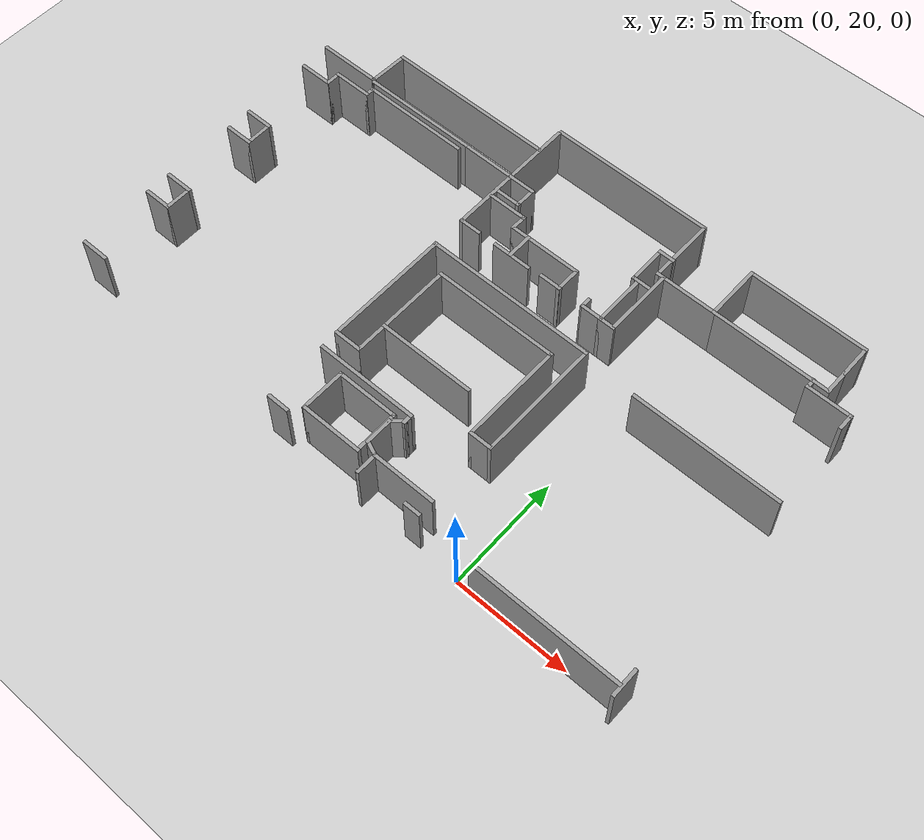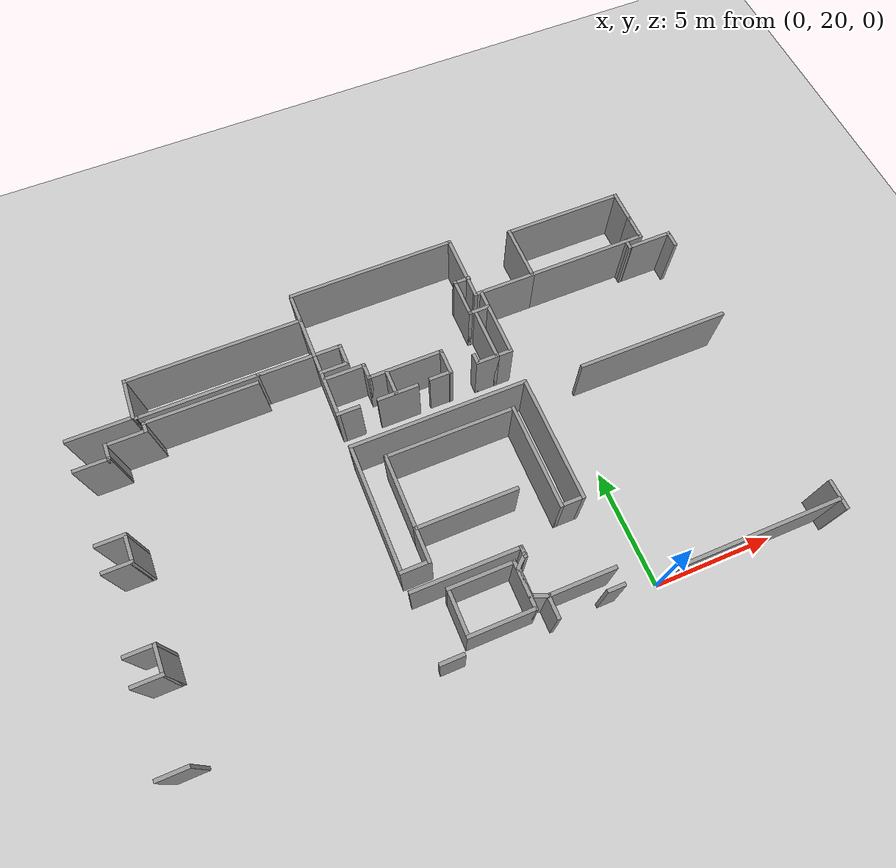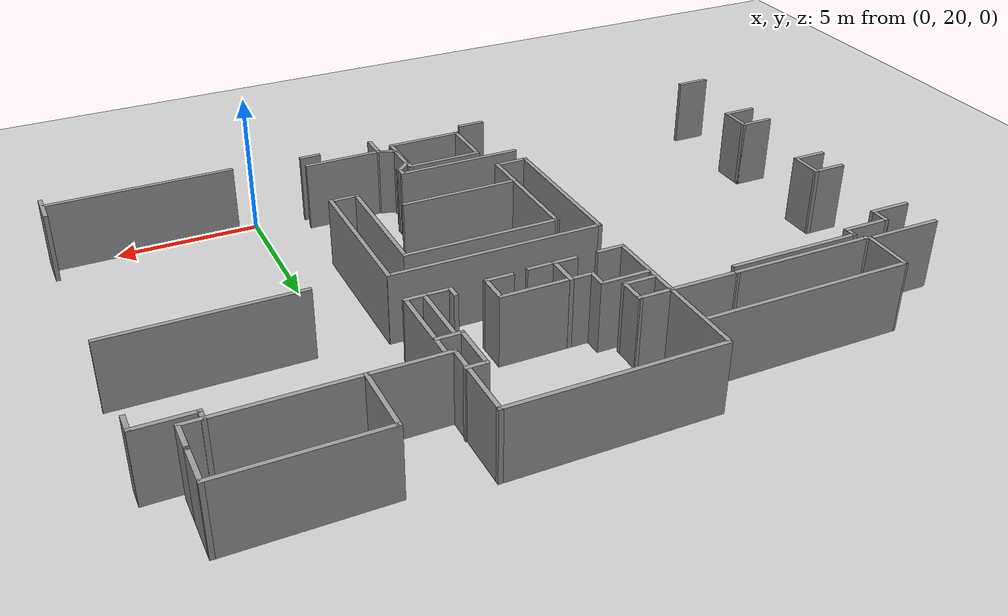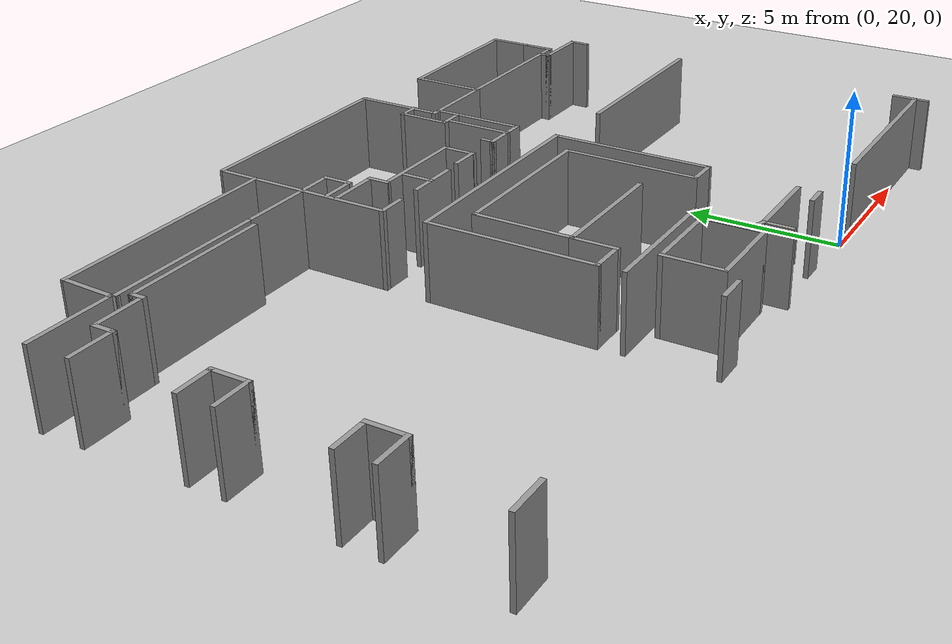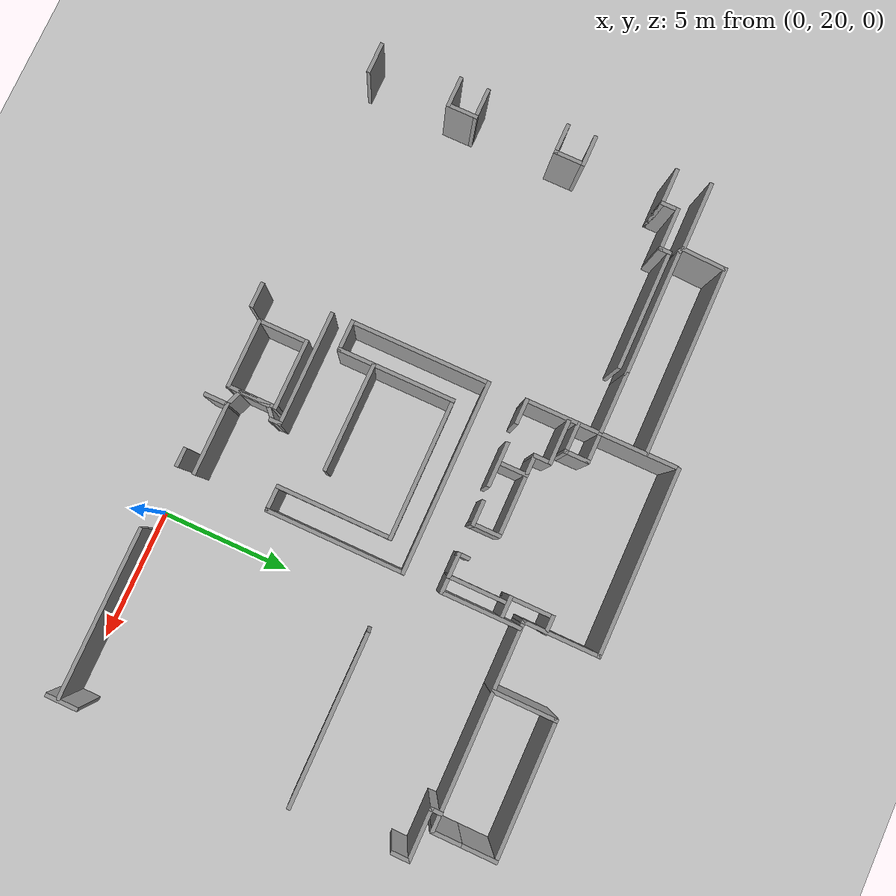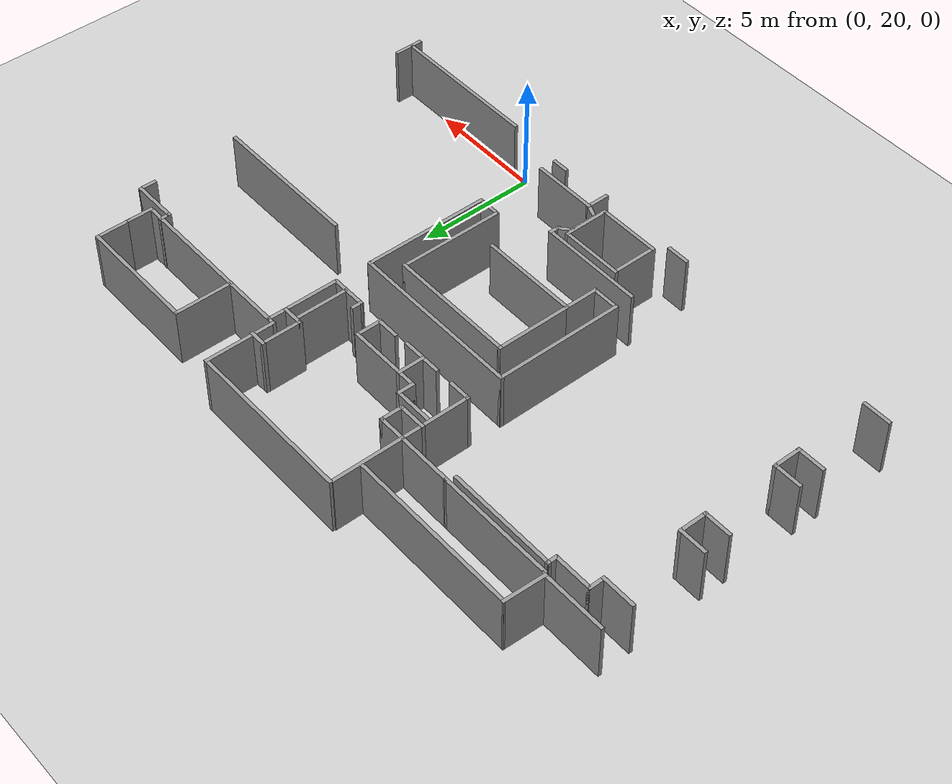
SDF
<sdf version="1.6">
 <world name="default">
  <model name="ground_plane">
   <static>1</static>
   <link name="link">
    <collision name="collision">
     <geometry><plane><normal>0 0 1</normal><size>100 100</size></plane></geometry>
     <surface>
      <contact><collide_bitmask>65535</collide_bitmask></contact>
      <friction><ode><mu>100</mu><mu2>50</mu2></ode></friction>
     </surface>
    </collision>
    <visual name="visual">
     <cast_shadows>0</cast_shadows>
     <geometry><plane><normal>0 0 1</normal><size>100 100</size></plane></geometry>
     <material>
      <script><uri>file://media/materials/scripts/gazebo.material</uri><name>Gazebo/Grey</name></script>
     </material>
    </visual>
   </link>
  </model>
  <model name="Tsudanuma_2-3-with_door">
   <pose>11.7222 12.8329 0 0 -0 0</pose>
   <link name="Wall_102">
    <collision name="Wall_102_Collision">
     <geometry><box><size>1.25 0.15 2.5</size></box></geometry>
     <pose>0 0 1.25 0 -0 0</pose>
    </collision>
    <visual name="Wall_102_Visual">
     <pose>0 0 1.25 0 -0 0</pose>
     <geometry><box><size>1.25 0.15 2.5</size></box></geometry>
     <material>
      <script><uri>file://media/materials/scripts/gazebo.material</uri><name>Gazebo/Grey</name></script>
      <ambient>1 1 1 1</ambient>
     </material>
     <meta><layer>0</layer></meta>
    </visual>
    <pose>-20.2708 10.8167 0 0 -0 0</pose>
   </link>
   <link name="Wall_103">
    <collision name="Wall_103_Collision">
     <geometry><box><size>1.5 0.15 2.5</size></box></geometry>
     <pose>0 0 1.25 0 -0 0</pose>
    </collision>
    <visual name="Wall_103_Visual">
     <pose>0 0 1.25 0 -0 0</pose>
     <geometry><box><size>1.5 0.15 2.5</size></box></geometry>
     <material>
      <script><uri>file://media/materials/scripts/gazebo.material</uri><name>Gazebo/Grey</name></script>
      <ambient>1 1 1 1</ambient>
     </material>
     <meta><layer>0</layer></meta>
    </visual>
    <pose>-19.7208 11.4917 0 0 -0 1.5708</pose>
   </link>
   <link name="Wall_104">
    <collision name="Wall_104_Collision">
     <geometry><box><size>4.25 0.15 2.5</size></box></geometry>
     <pose>0 0 1.25 0 -0 0</pose>
    </collision>
    <visual name="Wall_104_Visual">
     <pose>0 0 1.25 0 -0 0</pose>
     <geometry><box><size>4.25 0.15 2.5</size></box></geometry>
     <material>
      <script><uri>file://media/materials/scripts/gazebo.material</uri><name>Gazebo/Grey</name></script>
      <ambient>1 1 1 1</ambient>
     </material>
     <meta><layer>0</layer></meta>
    </visual>
    <pose>-17.6708 12.1667 0 0 -0 0</pose>
   </link>
   <link name="Wall_106">
    <collision name="Wall_106_Collision">
     <geometry><box><size>3.25 0.15 2.5</size></box></geometry>
     <pose>0 0 1.25 0 -0 0</pose>
    </collision>
    <visual name="Wall_106_Visual">
     <pose>0 0 1.25 0 -0 0</pose>
     <geometry><box><size>3.25 0.15 2.5</size></box></geometry>
     <material>
      <script><uri>file://media/materials/scripts/gazebo.material</uri><name>Gazebo/Grey</name></script>
      <ambient>1 1 1 1</ambient>
     </material>
     <meta><layer>0</layer></meta>
    </visual>
    <pose>-19.7208 13.7167 0 0 -0 1.5708</pose>
   </link>
   <link name="Wall_107">
    <collision name="Wall_107_Collision">
     <geometry><box><size>5.5 0.15 2.5</size></box></geometry>
     <pose>0 0 1.25 0 -0 0</pose>
    </collision>
    <visual name="Wall_107_Visual">
     <pose>0 0 1.25 0 -0 0</pose>
     <geometry><box><size>5.5 0.15 2.5</size></box></geometry>
     <material>
      <script><uri>file://media/materials/scripts/gazebo.material</uri><name>Gazebo/Grey</name></script>
      <ambient>1 1 1 1</ambient>
     </material>
     <meta><layer>0</layer></meta>
    </visual>
    <pose>-17.0458 15.2667 0 0 -0 0</pose>
   </link>
   <link name="Wall_108">
    <collision name="Wall_108_Collision">
     <geometry><box><size>4.5 0.15 2.5</size></box></geometry>
     <pose>0 0 1.25 0 -0 0</pose>
    </collision>
    <visual name="Wall_108_Visual">
     <pose>0 0 1.25 0 -0 0</pose>
     <geometry><box><size>4.5 0.15 2.5</size></box></geometry>
     <material>
      <script><uri>file://media/materials/scripts/gazebo.material</uri><name>Gazebo/Grey</name></script>
      <ambient>1 1 1 1</ambient>
     </material>
     <meta><layer>0</layer></meta>
    </visual>
    <pose>-14.3708 13.0917 0 0 -0 -1.5708</pose>
   </link>
   <link name="Wall_109">
    <collision name="Wall_109_Collision">
     <geometry><box><size>1 0.15 2.5</size></box></geometry>
     <pose>0 0 1.25 0 -0 0</pose>
    </collision>
    <visual name="Wall_109_Visual">
     <pose>0 0 1.25 0 -0 0</pose>
     <geometry><box><size>1 0.15 2.5</size></box></geometry>
     <material>
      <script><uri>file://media/materials/scripts/gazebo.material</uri><name>Gazebo/Grey</name></script>
      <ambient>1 1 1 1</ambient>
     </material>
     <meta><layer>0</layer></meta>
    </visual>
    <pose>-13.9458 10.9167 0 0 -0 0</pose>
   </link>
   <link name="Wall_112">
    <collision name="Wall_112_Collision">
     <geometry><box><size>5.4 0.15 2.5</size></box></geometry>
     <pose>0 0 1.25 0 -0 0</pose>
    </collision>
    <visual name="Wall_112_Visual">
     <pose>0 0 1.25 0 -0 0</pose>
     <geometry><box><size>5.4 0.15 2.5</size></box></geometry>
     <material>
      <script><uri>file://media/materials/scripts/gazebo.material</uri><name>Gazebo/Grey</name></script>
      <ambient>1 1 1 1</ambient>
     </material>
     <meta><layer>0</layer></meta>
    </visual>
    <pose>-13.4614 13.5404 0 0 -0 -1.5708</pose>
   </link>
   <link name="Wall_114">
    <collision name="Wall_114_Collision">
     <geometry><box><size>7.5 0.15 2.5</size></box></geometry>
     <pose>0 0 1.25 0 -0 0</pose>
    </collision>
    <visual name="Wall_114_Visual">
     <pose>0 0 1.25 0 -0 0</pose>
     <geometry><box><size>7.5 0.15 2.5</size></box></geometry>
     <material>
      <script><uri>file://media/materials/scripts/gazebo.material</uri><name>Gazebo/Grey</name></script>
      <ambient>1 1 1 1</ambient>
     </material>
     <meta><layer>0</layer></meta>
    </visual>
    <pose>-17.1458 16.1667 0 0 -0 0</pose>
   </link>
   <link name="Wall_116">
    <collision name="Wall_116_Collision">
     <geometry><box><size>0.715508 0.15 2.5</size></box></geometry>
     <pose>0 0 1.25 0 -0 0</pose>
    </collision>
    <visual name="Wall_116_Visual">
     <pose>0 0 1.25 0 -0 0</pose>
     <geometry><box><size>0.715508 0.15 2.5</size></box></geometry>
     <material>
      <script><uri>file://media/materials/scripts/gazebo.material</uri><name>Gazebo/Grey</name></script>
      <ambient>1 1 1 1</ambient>
     </material>
     <meta><layer>0</layer></meta>
    </visual>
    <pose>-16.6297 9.54241 0 0 -0 0.731865</pose>
   </link>
   <link name="Wall_118">
    <collision name="Wall_118_Collision">
     <geometry><box><size>0.5 0.15 2.5</size></box></geometry>
     <pose>0 0 1.25 0 -0 0</pose>
    </collision>
    <visual name="Wall_118_Visual">
     <pose>0 0 1.25 0 -0 0</pose>
     <geometry><box><size>0.5 0.15 2.5</size></box></geometry>
     <material>
      <script><uri>file://media/materials/scripts/gazebo.material</uri><name>Gazebo/Grey</name></script>
      <ambient>1 1 1 1</ambient>
     </material>
     <meta><layer>0</layer></meta>
    </visual>
    <pose>-16.4194 9.84917 0 0 -0 1.5708</pose>
   </link>
   <link name="Wall_119">
    <collision name="Wall_119_Collision">
     <geometry><box><size>4.5 0.15 2.5</size></box></geometry>
     <pose>0 0 1.25 0 -0 0</pose>
    </collision>
    <visual name="Wall_119_Visual">
     <pose>0 0 1.25 0 -0 0</pose>
     <geometry><box><size>4.5 0.15 2.5</size></box></geometry>
     <material>
      <script><uri>file://media/materials/scripts/gazebo.material</uri><name>Gazebo/Grey</name></script>
      <ambient>1 1 1 1</ambient>
     </material>
     <meta><layer>0</layer></meta>
    </visual>
    <pose>-18.5944 10.0242 0 0 -0 3.14159</pose>
   </link>
   <link name="Wall_123">
    <collision name="Wall_123_Collision">
     <geometry><box><size>2.82925 0.15 2.5</size></box></geometry>
     <pose>0 0 1.25 0 -0 0</pose>
    </collision>
    <visual name="Wall_123_Visual">
     <pose>0 0 1.25 0 -0 0</pose>
     <geometry><box><size>2.82925 0.15 2.5</size></box></geometry>
     <material>
      <script><uri>file://media/materials/scripts/gazebo.material</uri><name>Gazebo/Grey</name></script>
      <ambient>1 1 1 1</ambient>
     </material>
     <meta><layer>0</layer></meta>
    </visual>
    <pose>-14.9297 8.02417 0 0 -0 -3.14159</pose>
   </link>
   <link name="Wall_124">
    <collision name="Wall_124_Collision">
     <geometry><box><size>0.765048 0.15 2.5</size></box></geometry>
     <pose>0 0 1.25 0 -0 0</pose>
    </collision>
    <visual name="Wall_124_Visual">
     <pose>0 0 1.25 0 -0 0</pose>
     <geometry><box><size>0.765048 0.15 2.5</size></box></geometry>
     <material>
      <script><uri>file://media/materials/scripts/gazebo.material</uri><name>Gazebo/Grey</name></script>
      <ambient>1 1 1 1</ambient>
     </material>
     <meta><layer>0</layer></meta>
    </visual>
    <pose>-16.5547 8.13882 0 0 -0 2.75957</pose>
   </link>
   <link name="Wall_128">
    <collision name="Wall_128_Collision">
     <geometry><box><size>1.25 0.15 2.5</size></box></geometry>
     <pose>0 0 1.25 0 -0 0</pose>
    </collision>
    <visual name="Wall_128_Visual">
     <pose>0 0 1.25 0 -0 0</pose>
     <geometry><box><size>1.25 0.15 2.5</size></box></geometry>
     <material>
      <script><uri>file://media/materials/scripts/gazebo.material</uri><name>Gazebo/Grey</name></script>
      <ambient>1 1 1 1</ambient>
     </material>
     <meta><layer>0</layer></meta>
    </visual>
    <pose>-16.8401 8.80346 0 0 -0 1.5708</pose>
   </link>
   <link name="Wall_13">
    <collision name="Wall_13_Collision">
     <geometry><box><size>1.5 0.15 2.5</size></box></geometry>
     <pose>0 0 1.25 0 -0 0</pose>
    </collision>
    <visual name="Wall_13_Visual">
     <pose>0 0 1.25 0 -0 0</pose>
     <geometry><box><size>1.5 0.15 2.5</size></box></geometry>
     <material>
      <script><uri>file://media/materials/scripts/gazebo.material</uri><name>Gazebo/Grey</name></script>
      <ambient>1 1 1 1</ambient>
     </material>
     <meta><layer>0</layer></meta>
    </visual>
    <pose>-5.97206 22.335 0 0 -0 1.5708</pose>
   </link>
   <link name="Wall_14">
    <collision name="Wall_14_Collision">
     <geometry><box><size>5.25 0.15 2.5</size></box></geometry>
     <pose>0 0 1.25 0 -0 0</pose>
    </collision>
    <visual name="Wall_14_Visual">
     <pose>0 0 1.25 0 -0 0</pose>
     <geometry><box><size>5.25 0.15 2.5</size></box></geometry>
     <material>
      <script><uri>file://media/materials/scripts/gazebo.material</uri><name>Gazebo/Grey</name></script>
      <ambient>1 1 1 1</ambient>
     </material>
     <meta><layer>0</layer></meta>
    </visual>
    <pose>-8.52206 23.01 0 0 -0 3.14159</pose>
   </link>
   <link name="Wall_15">
    <collision name="Wall_15_Collision">
     <geometry><box><size>2.5 0.15 2.5</size></box></geometry>
     <pose>0 0 1.25 0 -0 0</pose>
    </collision>
    <visual name="Wall_15_Visual">
     <pose>0 0 1.25 0 -0 0</pose>
     <geometry><box><size>2.5 0.15 2.5</size></box></geometry>
     <material>
      <script><uri>file://media/materials/scripts/gazebo.material</uri><name>Gazebo/Grey</name></script>
      <ambient>1 1 1 1</ambient>
     </material>
     <meta><layer>0</layer></meta>
    </visual>
    <pose>-11.0721 21.835 0 0 -0 -1.5708</pose>
   </link>
   <link name="Wall_16">
    <collision name="Wall_16_Collision">
     <geometry><box><size>2.75 0.15 2.5</size></box></geometry>
     <pose>0 0 1.25 0 -0 0</pose>
    </collision>
    <visual name="Wall_16_Visual">
     <pose>0 0 1.25 0 -0 0</pose>
     <geometry><box><size>2.75 0.15 2.5</size></box></geometry>
     <material>
      <script><uri>file://media/materials/scripts/gazebo.material</uri><name>Gazebo/Grey</name></script>
      <ambient>1 1 1 1</ambient>
     </material>
     <meta><layer>0</layer></meta>
    </visual>
    <pose>-12.3721 20.66 0 0 -0 3.14159</pose>
   </link>
   <link name="Wall_17">
    <collision name="Wall_17_Collision">
     <geometry><box><size>3 0.15 2.5</size></box></geometry>
     <pose>0 0 1.25 0 -0 0</pose>
    </collision>
    <visual name="Wall_17_Visual">
     <pose>0 0 1.25 0 -0 0</pose>
     <geometry><box><size>3 0.15 2.5</size></box></geometry>
     <material>
      <script><uri>file://media/materials/scripts/gazebo.material</uri><name>Gazebo/Grey</name></script>
      <ambient>1 1 1 1</ambient>
     </material>
     <meta><layer>0</layer></meta>
    </visual>
    <pose>-13.6721 22.085 0 0 -0 1.5708</pose>
   </link>
   <link name="Wall_171">
    <collision name="Wall_171_Collision">
     <geometry><box><size>6.5 0.15 2.5</size></box></geometry>
     <pose>0 0 1.25 0 -0 0</pose>
    </collision>
    <visual name="Wall_171_Visual">
     <pose>0 0 1.25 0 -0 0</pose>
     <geometry><box><size>6.5 0.15 2.5</size></box></geometry>
     <material>
      <script><uri>file://media/materials/scripts/gazebo.material</uri><name>Gazebo/Grey</name></script>
      <ambient>1 1 1 1</ambient>
     </material>
     <meta><layer>0</layer></meta>
    </visual>
    <pose>-7.84492 7.16554 0 0 -0 0</pose>
   </link>
   <link name="Wall_18">
    <collision name="Wall_18_Collision">
     <geometry><box><size>7.25 0.15 2.5</size></box></geometry>
     <pose>0 0 1.25 0 -0 0</pose>
    </collision>
    <visual name="Wall_18_Visual">
     <pose>0 0 1.25 0 -0 0</pose>
     <geometry><box><size>7.25 0.15 2.5</size></box></geometry>
     <material>
      <script><uri>file://media/materials/scripts/gazebo.material</uri><name>Gazebo/Grey</name></script>
      <ambient>1 1 1 1</ambient>
     </material>
     <meta><layer>0</layer></meta>
    </visual>
    <pose>-17.2221 23.51 0 0 -0 3.14159</pose>
   </link>
   <link name="Wall_22">
    <collision name="Wall_22_Collision">
     <geometry><box><size>2.8 0.15 2.5</size></box></geometry>
     <pose>0 0 1.25 0 -0 0</pose>
    </collision>
    <visual name="Wall_22_Visual">
     <pose>0 0 1.25 0 -0 0</pose>
     <geometry><box><size>2.8 0.15 2.5</size></box></geometry>
     <material>
      <script><uri>file://media/materials/scripts/gazebo.material</uri><name>Gazebo/Grey</name></script>
      <ambient>1 1 1 1</ambient>
     </material>
     <meta><layer>0</layer></meta>
    </visual>
    <pose>-29.553 20.5846 0 0 -0 3.14159</pose>
   </link>
   <link name="Wall_38">
    <collision name="Wall_38_Collision">
     <geometry><box><size>1 0.15 2.5</size></box></geometry>
     <pose>0 0 1.25 0 -0 0</pose>
    </collision>
    <visual name="Wall_38_Visual">
     <pose>0 0 1.25 0 -0 0</pose>
     <geometry><box><size>1 0.15 2.5</size></box></geometry>
     <material>
      <script><uri>file://media/materials/scripts/gazebo.material</uri><name>Gazebo/Grey</name></script>
      <ambient>1 1 1 1</ambient>
     </material>
     <meta><layer>0</layer></meta>
    </visual>
    <pose>-20.3843 17.647 0 0 -0 3.14159</pose>
   </link>
   <link name="Wall_39">
    <collision name="Wall_39_Collision">
     <geometry><box><size>3 0.15 2.5</size></box></geometry>
     <pose>0 0 1.25 0 -0 0</pose>
    </collision>
    <visual name="Wall_39_Visual">
     <pose>0 0 1.25 0 -0 0</pose>
     <geometry><box><size>3 0.15 2.5</size></box></geometry>
     <material>
      <script><uri>file://media/materials/scripts/gazebo.material</uri><name>Gazebo/Grey</name></script>
      <ambient>1 1 1 1</ambient>
     </material>
     <meta><layer>0</layer></meta>
    </visual>
    <pose>-20.8093 19.072 0 0 -0 1.5708</pose>
   </link>
   <link name="Wall_40">
    <collision name="Wall_40_Collision">
     <geometry><box><size>2.49537 0.15 2.5</size></box></geometry>
     <pose>0 0 1.25 0 -0 0</pose>
    </collision>
    <visual name="Wall_40_Visual">
     <pose>0 0 1.25 0 -0 0</pose>
     <geometry><box><size>2.49537 0.15 2.5</size></box></geometry>
     <material>
      <script><uri>file://media/materials/scripts/gazebo.material</uri><name>Gazebo/Grey</name></script>
      <ambient>1 1 1 1</ambient>
     </material>
     <meta><layer>0</layer></meta>
    </visual>
    <pose>-21.9819 20.5016 0 0 -0 3.13764</pose>
   </link>
   <link name="Wall_42">
    <collision name="Wall_42_Collision">
     <geometry><box><size>3.05 0.15 2.5</size></box></geometry>
     <pose>0 0 1.25 0 -0 0</pose>
    </collision>
    <visual name="Wall_42_Visual">
     <pose>0 0 1.25 0 -0 0</pose>
     <geometry><box><size>3.05 0.15 2.5</size></box></geometry>
     <material>
      <script><uri>file://media/materials/scripts/gazebo.material</uri><name>Gazebo/Grey</name></script>
      <ambient>1 1 1 1</ambient>
     </material>
     <meta><layer>0</layer></meta>
    </visual>
    <pose>-20.8093 21.947 0 0 -0 1.5708</pose>
   </link>
   <link name="Wall_44">
    <collision name="Wall_44_Collision">
     <geometry><box><size>1.75 0.15 2.5</size></box></geometry>
     <pose>0 0 1.25 0 -0 0</pose>
    </collision>
    <visual name="Wall_44_Visual">
     <pose>0 0 1.25 0 -0 0</pose>
     <geometry><box><size>1.75 0.15 2.5</size></box></geometry>
     <material>
      <script><uri>file://media/materials/scripts/gazebo.material</uri><name>Gazebo/Grey</name></script>
      <ambient>1 1 1 1</ambient>
     </material>
     <meta><layer>0</layer></meta>
    </visual>
    <pose>-18.3034 17.647 0 0 -0 0</pose>
   </link>
   <link name="Wall_440">
    <collision name="Wall_440_Collision">
     <geometry><box><size>1.25 0.15 2.5</size></box></geometry>
     <pose>0 0 1.25 0 -0 0</pose>
    </collision>
    <visual name="Wall_440_Visual">
     <pose>0 0 1.25 0 -0 0</pose>
     <geometry><box><size>1.25 0.15 2.5</size></box></geometry>
     <material>
      <script><uri>file://media/materials/scripts/gazebo.material</uri><name>Gazebo/Grey</name></script>
      <ambient>1 1 1 1</ambient>
     </material>
     <meta><layer>0</layer></meta>
    </visual>
    <pose>-4.59279 7.31773 0 0 -0 1.5708</pose>
   </link>
   <link name="Wall_480">
    <collision name="Wall_480_Collision">
     <geometry><box><size>1.25 0.15 2.5</size></box></geometry>
     <pose>0 0 1.25 0 -0 0</pose>
    </collision>
    <visual name="Wall_480_Visual">
     <pose>0 0 1.25 0 -0 0</pose>
     <geometry><box><size>1.25 0.15 2.5</size></box></geometry>
     <material>
      <script><uri>file://media/materials/scripts/gazebo.material</uri><name>Gazebo/Grey</name></script>
      <ambient>1 1 1 1</ambient>
     </material>
     <meta><layer>0</layer></meta>
    </visual>
    <pose>-30.2299 7.40419 0 0 -0 3.14159</pose>
   </link>
   <link name="Wall_482">
    <collision name="Wall_482_Collision">
     <geometry><box><size>1.25 0.15 2.5</size></box></geometry>
     <pose>0 0 1.25 0 -0 0</pose>
    </collision>
    <visual name="Wall_482_Visual">
     <pose>0 0 1.25 0 -0 0</pose>
     <geometry><box><size>1.25 0.15 2.5</size></box></geometry>
     <material>
      <script><uri>file://media/materials/scripts/gazebo.material</uri><name>Gazebo/Grey</name></script>
      <ambient>1 1 1 1</ambient>
     </material>
     <meta><layer>0</layer></meta>
    </visual>
    <pose>-30.2381 10.6201 0 0 -0 0</pose>
   </link>
   <link name="Wall_483">
    <collision name="Wall_483_Collision">
     <geometry><box><size>1.25 0.15 2.5</size></box></geometry>
     <pose>0 0 1.25 0 -0 0</pose>
    </collision>
    <visual name="Wall_483_Visual">
     <pose>0 0 1.25 0 -0 0</pose>
     <geometry><box><size>1.25 0.15 2.5</size></box></geometry>
     <material>
      <script><uri>file://media/materials/scripts/gazebo.material</uri><name>Gazebo/Grey</name></script>
      <ambient>1 1 1 1</ambient>
     </material>
     <meta><layer>0</layer></meta>
    </visual>
    <pose>-29.6881 11.1701 0 0 -0 1.5708</pose>
   </link>
   <link name="Wall_484">
    <collision name="Wall_484_Collision">
     <geometry><box><size>1.25 0.15 2.5</size></box></geometry>
     <pose>0 0 1.25 0 -0 0</pose>
    </collision>
    <visual name="Wall_484_Visual">
     <pose>0 0 1.25 0 -0 0</pose>
     <geometry><box><size>1.25 0.15 2.5</size></box></geometry>
     <material>
      <script><uri>file://media/materials/scripts/gazebo.material</uri><name>Gazebo/Grey</name></script>
      <ambient>1 1 1 1</ambient>
     </material>
     <meta><layer>0</layer></meta>
    </visual>
    <pose>-30.2381 11.7201 0 0 -0 3.14159</pose>
   </link>
   <link name="Wall_486">
    <collision name="Wall_486_Collision">
     <geometry><box><size>1.25 0.15 2.5</size></box></geometry>
     <pose>0 0 1.25 0 -0 0</pose>
    </collision>
    <visual name="Wall_486_Visual">
     <pose>0 0 1.25 0 -0 0</pose>
     <geometry><box><size>1.25 0.15 2.5</size></box></geometry>
     <material>
      <script><uri>file://media/materials/scripts/gazebo.material</uri><name>Gazebo/Grey</name></script>
      <ambient>1 1 1 1</ambient>
     </material>
     <meta><layer>0</layer></meta>
    </visual>
    <pose>-30.2217 14.9359 0 0 -0 0</pose>
   </link>
   <link name="Wall_487">
    <collision name="Wall_487_Collision">
     <geometry><box><size>1.25 0.15 2.5</size></box></geometry>
     <pose>0 0 1.25 0 -0 0</pose>
    </collision>
    <visual name="Wall_487_Visual">
     <pose>0 0 1.25 0 -0 0</pose>
     <geometry><box><size>1.25 0.15 2.5</size></box></geometry>
     <material>
      <script><uri>file://media/materials/scripts/gazebo.material</uri><name>Gazebo/Grey</name></script>
      <ambient>1 1 1 1</ambient>
     </material>
     <meta><layer>0</layer></meta>
    </visual>
    <pose>-29.6717 15.4859 0 0 -0 1.5708</pose>
   </link>
   <link name="Wall_488">
    <collision name="Wall_488_Collision">
     <geometry><box><size>1.25 0.15 2.5</size></box></geometry>
     <pose>0 0 1.25 0 -0 0</pose>
    </collision>
    <visual name="Wall_488_Visual">
     <pose>0 0 1.25 0 -0 0</pose>
     <geometry><box><size>1.25 0.15 2.5</size></box></geometry>
     <material>
      <script><uri>file://media/materials/scripts/gazebo.material</uri><name>Gazebo/Grey</name></script>
      <ambient>1 1 1 1</ambient>
     </material>
     <meta><layer>0</layer></meta>
    </visual>
    <pose>-30.2217 16.0359 0 0 -0 3.14159</pose>
   </link>
   <link name="Wall_49">
    <collision name="Wall_49_Collision">
     <geometry><box><size>1.75 0.15 2.5</size></box></geometry>
     <pose>0 0 1.25 0 -0 0</pose>
    </collision>
    <visual name="Wall_49_Visual">
     <pose>0 0 1.25 0 -0 0</pose>
     <geometry><box><size>1.75 0.15 2.5</size></box></geometry>
     <material>
      <script><uri>file://media/materials/scripts/gazebo.material</uri><name>Gazebo/Grey</name></script>
      <ambient>1 1 1 1</ambient>
     </material>
     <meta><layer>0</layer></meta>
    </visual>
    <pose>-19.9221 19.3029 0 0 -0 0</pose>
   </link>
   <link name="Wall_490">
    <collision name="Wall_490_Collision">
     <geometry><box><size>1.5 0.15 2.5</size></box></geometry>
     <pose>0 0 1.25 0 -0 0</pose>
    </collision>
    <visual name="Wall_490_Visual">
     <pose>0 0 1.25 0 -0 0</pose>
     <geometry><box><size>1.5 0.15 2.5</size></box></geometry>
     <material>
      <script><uri>file://media/materials/scripts/gazebo.material</uri><name>Gazebo/Grey</name></script>
      <ambient>1 1 1 1</ambient>
     </material>
     <meta><layer>0</layer></meta>
    </visual>
    <pose>-30.1789 19.2353 0 0 -0 0</pose>
   </link>
   <link name="Wall_491">
    <collision name="Wall_491_Collision">
     <geometry><box><size>0.75 0.15 2.5</size></box></geometry>
     <pose>0 0 1.25 0 -0 0</pose>
    </collision>
    <visual name="Wall_491_Visual">
     <pose>0 0 1.25 0 -0 0</pose>
     <geometry><box><size>0.75 0.15 2.5</size></box></geometry>
     <material>
      <script><uri>file://media/materials/scripts/gazebo.material</uri><name>Gazebo/Grey</name></script>
      <ambient>1 1 1 1</ambient>
     </material>
     <meta><layer>0</layer></meta>
    </visual>
    <pose>-29.5039 19.5353 0 0 -0 1.5708</pose>
   </link>
   <link name="Wall_492">
    <collision name="Wall_492_Collision">
     <geometry><box><size>1.75 0.15 2.5</size></box></geometry>
     <pose>0 0 1.25 0 -0 0</pose>
    </collision>
    <visual name="Wall_492_Visual">
     <pose>0 0 1.25 0 -0 0</pose>
     <geometry><box><size>1.75 0.15 2.5</size></box></geometry>
     <material>
      <script><uri>file://media/materials/scripts/gazebo.material</uri><name>Gazebo/Grey</name></script>
      <ambient>1 1 1 1</ambient>
     </material>
     <meta><layer>0</layer></meta>
    </visual>
    <pose>-28.7039 19.8353 0 0 -0 0</pose>
   </link>
   <link name="Wall_493">
    <collision name="Wall_493_Collision">
     <geometry><box><size>0.5 0.15 2.5</size></box></geometry>
     <pose>0 0 1.25 0 -0 0</pose>
    </collision>
    <visual name="Wall_493_Visual">
     <pose>0 0 1.25 0 -0 0</pose>
     <geometry><box><size>0.5 0.15 2.5</size></box></geometry>
     <material>
      <script><uri>file://media/materials/scripts/gazebo.material</uri><name>Gazebo/Grey</name></script>
      <ambient>1 1 1 1</ambient>
     </material>
     <meta><layer>0</layer></meta>
    </visual>
    <pose>-27.9039 20.0103 0 0 -0 1.5708</pose>
   </link>
   <link name="Wall_494">
    <collision name="Wall_494_Collision">
     <geometry><box><size>4.75 0.15 2.5</size></box></geometry>
     <pose>0 0 1.25 0 -0 0</pose>
    </collision>
    <visual name="Wall_494_Visual">
     <pose>0 0 1.25 0 -0 0</pose>
     <geometry><box><size>4.75 0.15 2.5</size></box></geometry>
     <material>
      <script><uri>file://media/materials/scripts/gazebo.material</uri><name>Gazebo/Grey</name></script>
      <ambient>1 1 1 1</ambient>
     </material>
     <meta><layer>0</layer></meta>
    </visual>
    <pose>-25.6039 20.1853 0 0 -0 0</pose>
   </link>
   <link name="Wall_496">
    <collision name="Wall_496_Collision">
     <geometry><box><size>5.111 0.15 2.5</size></box></geometry>
     <pose>0 0 1.25 0 -0 0</pose>
    </collision>
    <visual name="Wall_496_Visual">
     <pose>0 0 1.25 0 -0 0</pose>
     <geometry><box><size>5.111 0.15 2.5</size></box></geometry>
     <material>
      <script><uri>file://media/materials/scripts/gazebo.material</uri><name>Gazebo/Grey</name></script>
      <ambient>1 1 1 1</ambient>
     </material>
     <meta><layer>0</layer></meta>
    </visual>
    <pose>-25.6356 20.5062 0 0 -0 3.14159</pose>
   </link>
   <link name="Wall_498">
    <collision name="Wall_498_Collision">
     <geometry><box><size>0.286168 0.15 2.5</size></box></geometry>
     <pose>0 0 1.25 0 -0 0</pose>
    </collision>
    <visual name="Wall_498_Visual">
     <pose>0 0 1.25 0 -0 0</pose>
     <geometry><box><size>0.286168 0.15 2.5</size></box></geometry>
     <material>
      <script><uri>file://media/materials/scripts/gazebo.material</uri><name>Gazebo/Grey</name></script>
      <ambient>1 1 1 1</ambient>
     </material>
     <meta><layer>0</layer></meta>
    </visual>
    <pose>-28.1723 20.5454 0 0 -0 2.52842</pose>
   </link>
   <link name="Wall_50">
    <collision name="Wall_50_Collision">
     <geometry><box><size>0.75 0.15 2.5</size></box></geometry>
     <pose>0 0 1.25 0 -0 0</pose>
    </collision>
    <visual name="Wall_50_Visual">
     <pose>0 0 1.25 0 -0 0</pose>
     <geometry><box><size>0.75 0.15 2.5</size></box></geometry>
     <material>
      <script><uri>file://media/materials/scripts/gazebo.material</uri><name>Gazebo/Grey</name></script>
      <ambient>1 1 1 1</ambient>
     </material>
     <meta><layer>0</layer></meta>
    </visual>
    <pose>-19.1221 19.0029 0 0 -0 -1.5708</pose>
   </link>
   <link name="Wall_500">
    <collision name="Wall_500_Collision">
     <geometry><box><size>0.75 0.15 2.5</size></box></geometry>
     <pose>0 0 1.25 0 -0 0</pose>
    </collision>
    <visual name="Wall_500_Visual">
     <pose>0 0 1.25 0 -0 0</pose>
     <geometry><box><size>0.75 0.15 2.5</size></box></geometry>
     <material>
      <script><uri>file://media/materials/scripts/gazebo.material</uri><name>Gazebo/Grey</name></script>
      <ambient>1 1 1 1</ambient>
     </material>
     <meta><layer>0</layer></meta>
    </visual>
    <pose>-13.7113 17.6691 0 0 -0 0</pose>
   </link>
   <link name="Wall_508">
    <collision name="Wall_508_Collision">
     <geometry><box><size>7.5 0.15 2.5</size></box></geometry>
     <pose>0 0 1.25 0 -0 0</pose>
    </collision>
    <visual name="Wall_508_Visual">
     <pose>0 0 1.25 0 -0 0</pose>
     <geometry><box><size>7.5 0.15 2.5</size></box></geometry>
     <material>
      <script><uri>file://media/materials/scripts/gazebo.material</uri><name>Gazebo/Grey</name></script>
      <ambient>1 1 1 1</ambient>
     </material>
     <meta><layer>0</layer></meta>
    </visual>
    <pose>-24.4875 22.2557 0 0 -0 3.14159</pose>
   </link>
   <link name="Wall_509">
    <collision name="Wall_509_Collision">
     <geometry><box><size>1.82235 0.15 2.5</size></box></geometry>
     <pose>0 0 1.25 0 -0 0</pose>
    </collision>
    <visual name="Wall_509_Visual">
     <pose>0 0 1.25 0 -0 0</pose>
     <geometry><box><size>1.82235 0.15 2.5</size></box></geometry>
     <material>
      <script><uri>file://media/materials/scripts/gazebo.material</uri><name>Gazebo/Grey</name></script>
      <ambient>1 1 1 1</ambient>
     </material>
     <meta><layer>0</layer></meta>
    </visual>
    <pose>-28.1953 21.4201 0 0 -0 -1.60995</pose>
   </link>
   <link name="Wall_51">
    <collision name="Wall_51_Collision">
     <geometry><box><size>3.25 0.15 2.5</size></box></geometry>
     <pose>0 0 1.25 0 -0 0</pose>
    </collision>
    <visual name="Wall_51_Visual">
     <pose>0 0 1.25 0 -0 0</pose>
     <geometry><box><size>3.25 0.15 2.5</size></box></geometry>
     <material>
      <script><uri>file://media/materials/scripts/gazebo.material</uri><name>Gazebo/Grey</name></script>
      <ambient>1 1 1 1</ambient>
     </material>
     <meta><layer>0</layer></meta>
    </visual>
    <pose>-17.5721 18.7029 0 0 -0 0</pose>
   </link>
   <link name="Wall_519">
    <collision name="Wall_519_Collision">
     <geometry><box><size>1 0.15 2.5</size></box></geometry>
     <pose>0 0 1.25 0 -0 0</pose>
    </collision>
    <visual name="Wall_519_Visual">
     <pose>0 0 1.25 0 -0 0</pose>
     <geometry><box><size>1 0.15 2.5</size></box></geometry>
     <material>
      <script><uri>file://media/materials/scripts/gazebo.material</uri><name>Gazebo/Grey</name></script>
      <ambient>1 1 1 1</ambient>
     </material>
     <meta><layer>0</layer></meta>
    </visual>
    <pose>-20.2994 7.27595 0 0 -0 0</pose>
   </link>
   <link name="Wall_52">
    <collision name="Wall_52_Collision">
     <geometry><box><size>1.16745 0.15 2.5</size></box></geometry>
     <pose>0 0 1.25 0 -0 0</pose>
    </collision>
    <visual name="Wall_52_Visual">
     <pose>0 0 1.25 0 -0 0</pose>
     <geometry><box><size>1.16745 0.15 2.5</size></box></geometry>
     <material>
      <script><uri>file://media/materials/scripts/gazebo.material</uri><name>Gazebo/Grey</name></script>
      <ambient>1 1 1 1</ambient>
     </material>
     <meta><layer>0</layer></meta>
    </visual>
    <pose>-16.0221 18.1941 0 0 -0 -1.5708</pose>
   </link>
   <link name="Wall_523">
    <collision name="Wall_523_Collision">
     <geometry><box><size>0.75 0.15 2.5</size></box></geometry>
     <pose>0 0 1.25 0 -0 0</pose>
    </collision>
    <visual name="Wall_523_Visual">
     <pose>0 0 1.25 0 -0 0</pose>
     <geometry><box><size>0.75 0.15 2.5</size></box></geometry>
     <material>
      <script><uri>file://media/materials/scripts/gazebo.material</uri><name>Gazebo/Grey</name></script>
      <ambient>1 1 1 1</ambient>
     </material>
     <meta><layer>0</layer></meta>
    </visual>
    <pose>-13.8897 7.34966 0 0 -0 3.14159</pose>
   </link>
   <link name="Wall_53">
    <collision name="Wall_53_Collision">
     <geometry><box><size>1 0.15 2.5</size></box></geometry>
     <pose>0 0 1.25 0 -0 0</pose>
    </collision>
    <visual name="Wall_53_Visual">
     <pose>0 0 1.25 0 -0 0</pose>
     <geometry><box><size>1 0.15 2.5</size></box></geometry>
     <material>
      <script><uri>file://media/materials/scripts/gazebo.material</uri><name>Gazebo/Grey</name></script>
      <ambient>1 1 1 1</ambient>
     </material>
     <meta><layer>0</layer></meta>
    </visual>
    <pose>-16.4471 17.704 0 0 -0 3.14159</pose>
   </link>
   <link name="Wall_530">
    <collision name="Wall_530_Collision">
     <geometry><box><size>2 0.15 2.5</size></box></geometry>
     <pose>0 0 1.25 0 -0 0</pose>
    </collision>
    <visual name="Wall_530_Visual">
     <pose>0 0 1.25 0 -0 0</pose>
     <geometry><box><size>2 0.15 2.5</size></box></geometry>
     <material>
      <script><uri>file://media/materials/scripts/gazebo.material</uri><name>Gazebo/Grey</name></script>
      <ambient>1 1 1 1</ambient>
     </material>
     <meta><layer>0</layer></meta>
    </visual>
    <pose>-16.8808 8.699 0 0 -0 -1.5708</pose>
   </link>
   <link name="Wall_532">
    <collision name="Wall_532_Collision">
     <geometry><box><size>2.75 0.15 2.5</size></box></geometry>
     <pose>0 0 1.25 0 -0 0</pose>
    </collision>
    <visual name="Wall_532_Visual">
     <pose>0 0 1.25 0 -0 0</pose>
     <geometry><box><size>2.75 0.15 2.5</size></box></geometry>
     <material>
      <script><uri>file://media/materials/scripts/gazebo.material</uri><name>Gazebo/Grey</name></script>
      <ambient>1 1 1 1</ambient>
     </material>
     <meta><layer>0</layer></meta>
    </visual>
    <pose>-18.1808 9.624 0 0 -0 3.14159</pose>
   </link>
   <link name="Wall_533">
    <collision name="Wall_533_Collision">
     <geometry><box><size>2 0.15 2.5</size></box></geometry>
     <pose>0 0 1.25 0 -0 0</pose>
    </collision>
    <visual name="Wall_533_Visual">
     <pose>0 0 1.25 0 -0 0</pose>
     <geometry><box><size>2 0.15 2.5</size></box></geometry>
     <material>
      <script><uri>file://media/materials/scripts/gazebo.material</uri><name>Gazebo/Grey</name></script>
      <ambient>1 1 1 1</ambient>
     </material>
     <meta><layer>0</layer></meta>
    </visual>
    <pose>-19.4808 8.699 0 0 -0 -1.5708</pose>
   </link>
   <link name="Wall_534">
    <collision name="Wall_534_Collision">
     <geometry><box><size>2.75 0.15 2.5</size></box></geometry>
     <pose>0 0 1.25 0 -0 0</pose>
    </collision>
    <visual name="Wall_534_Visual">
     <pose>0 0 1.25 0 -0 0</pose>
     <geometry><box><size>2.75 0.15 2.5</size></box></geometry>
     <material>
      <script><uri>file://media/materials/scripts/gazebo.material</uri><name>Gazebo/Grey</name></script>
      <ambient>1 1 1 1</ambient>
     </material>
     <meta><layer>0</layer></meta>
    </visual>
    <pose>-18.1808 7.774 0 0 -0 0</pose>
   </link>
   <link name="Wall_537">
    <collision name="Wall_537_Collision">
     <geometry><box><size>1 0.15 2.5</size></box></geometry>
     <pose>0 0 1.25 0 -0 0</pose>
    </collision>
    <visual name="Wall_537_Visual">
     <pose>0 0 1.25 0 -0 0</pose>
     <geometry><box><size>1 0.15 2.5</size></box></geometry>
     <material>
      <script><uri>file://media/materials/scripts/gazebo.material</uri><name>Gazebo/Grey</name></script>
      <ambient>1 1 1 1</ambient>
     </material>
     <meta><layer>0</layer></meta>
    </visual>
    <pose>-16.2694 7.59917 0 0 -0 -1.5708</pose>
   </link>
   <link name="Wall_55">
    <collision name="Wall_55_Collision">
     <geometry><box><size>1.2 0.15 2.5</size></box></geometry>
     <pose>0 0 1.25 0 -0 0</pose>
    </collision>
    <visual name="Wall_55_Visual">
     <pose>0 0 1.25 0 -0 0</pose>
     <geometry><box><size>1.2 0.15 2.5</size></box></geometry>
     <material>
      <script><uri>file://media/materials/scripts/gazebo.material</uri><name>Gazebo/Grey</name></script>
      <ambient>1 1 1 1</ambient>
     </material>
     <meta><layer>0</layer></meta>
    </visual>
    <pose>-18.3778 18.1814 0 0 -0 1.5708</pose>
   </link>
   <link name="Wall_57">
    <collision name="Wall_57_Collision">
     <geometry><box><size>1.25 0.15 2.5</size></box></geometry>
     <pose>0 0 1.25 0 -0 0</pose>
    </collision>
    <visual name="Wall_57_Visual">
     <pose>0 0 1.25 0 -0 0</pose>
     <geometry><box><size>1.25 0.15 2.5</size></box></geometry>
     <material>
      <script><uri>file://media/materials/scripts/gazebo.material</uri><name>Gazebo/Grey</name></script>
      <ambient>1 1 1 1</ambient>
     </material>
     <meta><layer>0</layer></meta>
    </visual>
    <pose>-20.2593 20.497 0 0 -0 0</pose>
   </link>
   <link name="Wall_58">
    <collision name="Wall_58_Collision">
     <geometry><box><size>1 0.15 2.5</size></box></geometry>
     <pose>0 0 1.25 0 -0 0</pose>
    </collision>
    <visual name="Wall_58_Visual">
     <pose>0 0 1.25 0 -0 0</pose>
     <geometry><box><size>1 0.15 2.5</size></box></geometry>
     <material>
      <script><uri>file://media/materials/scripts/gazebo.material</uri><name>Gazebo/Grey</name></script>
      <ambient>1 1 1 1</ambient>
     </material>
     <meta><layer>0</layer></meta>
    </visual>
    <pose>-19.7093 20.072 0 0 -0 -1.5708</pose>
   </link>
   <link name="Wall_59">
    <collision name="Wall_59_Collision">
     <geometry><box><size>1.25 0.15 2.5</size></box></geometry>
     <pose>0 0 1.25 0 -0 0</pose>
    </collision>
    <visual name="Wall_59_Visual">
     <pose>0 0 1.25 0 -0 0</pose>
     <geometry><box><size>1.25 0.15 2.5</size></box></geometry>
     <material>
      <script><uri>file://media/materials/scripts/gazebo.material</uri><name>Gazebo/Grey</name></script>
      <ambient>1 1 1 1</ambient>
     </material>
     <meta><layer>0</layer></meta>
    </visual>
    <pose>-20.2593 19.647 0 0 -0 3.14159</pose>
   </link>
   <link name="Wall_62">
    <collision name="Wall_62_Collision">
     <geometry><box><size>0.5 0.15 2.5</size></box></geometry>
     <pose>0 0 1.25 0 -0 0</pose>
    </collision>
    <visual name="Wall_62_Visual">
     <pose>0 0 1.25 0 -0 0</pose>
     <geometry><box><size>0.5 0.15 2.5</size></box></geometry>
     <material>
      <script><uri>file://media/materials/scripts/gazebo.material</uri><name>Gazebo/Grey</name></script>
      <ambient>1 1 1 1</ambient>
     </material>
     <meta><layer>0</layer></meta>
    </visual>
    <pose>-14.8613 17.8441 0 0 -0 -1.5708</pose>
   </link>
   <link name="Wall_63">
    <collision name="Wall_63_Collision">
     <geometry><box><size>1 0.15 2.5</size></box></geometry>
     <pose>0 0 1.25 0 -0 0</pose>
    </collision>
    <visual name="Wall_63_Visual">
     <pose>0 0 1.25 0 -0 0</pose>
     <geometry><box><size>1 0.15 2.5</size></box></geometry>
     <material>
      <script><uri>file://media/materials/scripts/gazebo.material</uri><name>Gazebo/Grey</name></script>
      <ambient>1 1 1 1</ambient>
     </material>
     <meta><layer>0</layer></meta>
    </visual>
    <pose>-14.4363 17.6691 0 0 -0 0</pose>
   </link>
   <link name="Wall_64">
    <collision name="Wall_64_Collision">
     <geometry><box><size>2.25 0.15 2.5</size></box></geometry>
     <pose>0 0 1.25 0 -0 0</pose>
    </collision>
    <visual name="Wall_64_Visual">
     <pose>0 0 1.25 0 -0 0</pose>
     <geometry><box><size>2.25 0.15 2.5</size></box></geometry>
     <material>
      <script><uri>file://media/materials/scripts/gazebo.material</uri><name>Gazebo/Grey</name></script>
      <ambient>1 1 1 1</ambient>
     </material>
     <meta><layer>0</layer></meta>
    </visual>
    <pose>-14.0113 18.7191 0 0 -0 1.5708</pose>
   </link>
   <link name="Wall_66">
    <collision name="Wall_66_Collision">
     <geometry><box><size>3 0.15 2.5</size></box></geometry>
     <pose>0 0 1.25 0 -0 0</pose>
    </collision>
    <visual name="Wall_66_Visual">
     <pose>0 0 1.25 0 -0 0</pose>
     <geometry><box><size>3 0.15 2.5</size></box></geometry>
     <material>
      <script><uri>file://media/materials/scripts/gazebo.material</uri><name>Gazebo/Grey</name></script>
      <ambient>1 1 1 1</ambient>
     </material>
     <meta><layer>0</layer></meta>
    </visual>
    <pose>-13.4113 19.1941 0 0 -0 1.5708</pose>
   </link>
   <link name="Wall_68">
    <collision name="Wall_68_Collision">
     <geometry><box><size>0.75 0.15 2.5</size></box></geometry>
     <pose>0 0 1.25 0 -0 0</pose>
    </collision>
    <visual name="Wall_68_Visual">
     <pose>0 0 1.25 0 -0 0</pose>
     <geometry><box><size>0.75 0.15 2.5</size></box></geometry>
     <material>
      <script><uri>file://media/materials/scripts/gazebo.material</uri><name>Gazebo/Grey</name></script>
      <ambient>1 1 1 1</ambient>
     </material>
     <meta><layer>0</layer></meta>
    </visual>
    <pose>-13.9334 21.5169 0 0 -0 3.14159</pose>
   </link>
   <link name="Wall_69">
    <collision name="Wall_69_Collision">
     <geometry><box><size>1.75 0.15 2.5</size></box></geometry>
     <pose>0 0 1.25 0 -0 0</pose>
    </collision>
    <visual name="Wall_69_Visual">
     <pose>0 0 1.25 0 -0 0</pose>
     <geometry><box><size>1.75 0.15 2.5</size></box></geometry>
     <material>
      <script><uri>file://media/materials/scripts/gazebo.material</uri><name>Gazebo/Grey</name></script>
      <ambient>1 1 1 1</ambient>
     </material>
     <meta><layer>0</layer></meta>
    </visual>
    <pose>-14.2334 20.7169 0 0 -0 -1.5708</pose>
   </link>
   <link name="Wall_70">
    <collision name="Wall_70_Collision">
     <geometry><box><size>0.95 0.15 2.5</size></box></geometry>
     <pose>0 0 1.25 0 -0 0</pose>
    </collision>
    <visual name="Wall_70_Visual">
     <pose>0 0 1.25 0 -0 0</pose>
     <geometry><box><size>0.95 0.15 2.5</size></box></geometry>
     <material>
      <script><uri>file://media/materials/scripts/gazebo.material</uri><name>Gazebo/Grey</name></script>
      <ambient>1 1 1 1</ambient>
     </material>
     <meta><layer>0</layer></meta>
    </visual>
    <pose>-13.8334 19.9169 0 0 -0 0</pose>
   </link>
   <link name="Wall_75">
    <collision name="Wall_75_Collision">
     <geometry><box><size>5.25 0.15 2.5</size></box></geometry>
     <pose>0 0 1.25 0 -0 0</pose>
    </collision>
    <visual name="Wall_75_Visual">
     <pose>0 0 1.25 0 -0 0</pose>
     <geometry><box><size>5.25 0.15 2.5</size></box></geometry>
     <material>
      <script><uri>file://media/materials/scripts/gazebo.material</uri><name>Gazebo/Grey</name></script>
      <ambient>1 1 1 1</ambient>
     </material>
     <meta><layer>0</layer></meta>
    </visual>
    <pose>-8.52206 20.66 0 0 -0 0</pose>
   </link>
   <link name="Wall_76">
    <collision name="Wall_76_Collision">
     <geometry><box><size>1.15 0.15 2.5</size></box></geometry>
     <pose>0 0 1.25 0 -0 0</pose>
    </collision>
    <visual name="Wall_76_Visual">
     <pose>0 0 1.25 0 -0 0</pose>
     <geometry><box><size>1.15 0.15 2.5</size></box></geometry>
     <material>
      <script><uri>file://media/materials/scripts/gazebo.material</uri><name>Gazebo/Grey</name></script>
      <ambient>1 1 1 1</ambient>
     </material>
     <meta><layer>0</layer></meta>
    </visual>
    <pose>-5.97206 21.16 0 0 -0 1.5708</pose>
   </link>
   <link name="Wall_78">
    <collision name="Wall_78_Collision">
     <geometry><box><size>0.5 0.15 2.5</size></box></geometry>
     <pose>0 0 1.25 0 -0 0</pose>
    </collision>
    <visual name="Wall_78_Visual">
     <pose>0 0 1.25 0 -0 0</pose>
     <geometry><box><size>0.5 0.15 2.5</size></box></geometry>
     <material>
      <script><uri>file://media/materials/scripts/gazebo.material</uri><name>Gazebo/Grey</name></script>
      <ambient>1 1 1 1</ambient>
     </material>
     <meta><layer>0</layer></meta>
    </visual>
    <pose>-6.6375 20.5036 0 0 -0 -1.5708</pose>
   </link>
   <link name="Wall_79">
    <collision name="Wall_79_Collision">
     <geometry><box><size>2 0.15 2.5</size></box></geometry>
     <pose>0 0 1.25 0 -0 0</pose>
    </collision>
    <visual name="Wall_79_Visual">
     <pose>0 0 1.25 0 -0 0</pose>
     <geometry><box><size>2 0.15 2.5</size></box></geometry>
     <material>
      <script><uri>file://media/materials/scripts/gazebo.material</uri><name>Gazebo/Grey</name></script>
      <ambient>1 1 1 1</ambient>
     </material>
     <meta><layer>0</layer></meta>
    </visual>
    <pose>-5.7125 20.3286 0 0 -0 0</pose>
   </link>
   <link name="Wall_80">
    <collision name="Wall_80_Collision">
     <geometry><box><size>0.75 0.15 2.5</size></box></geometry>
     <pose>0 0 1.25 0 -0 0</pose>
    </collision>
    <visual name="Wall_80_Visual">
     <pose>0 0 1.25 0 -0 0</pose>
     <geometry><box><size>0.75 0.15 2.5</size></box></geometry>
     <material>
      <script><uri>file://media/materials/scripts/gazebo.material</uri><name>Gazebo/Grey</name></script>
      <ambient>1 1 1 1</ambient>
     </material>
     <meta><layer>0</layer></meta>
    </visual>
    <pose>-4.7875 20.0286 0 0 -0 -1.5708</pose>
   </link>
   <link name="Wall_95">
    <collision name="Wall_95_Collision">
     <geometry><box><size>6.5 0.15 2.5</size></box></geometry>
     <pose>0 0 1.25 0 -0 0</pose>
    </collision>
    <visual name="Wall_95_Visual">
     <pose>0 0 1.25 0 -0 0</pose>
     <geometry><box><size>6.5 0.15 2.5</size></box></geometry>
     <material>
      <script><uri>file://media/materials/scripts/gazebo.material</uri><name>Gazebo/Grey</name></script>
      <ambient>1 1 1 1</ambient>
     </material>
     <meta><layer>0</layer></meta>
    </visual>
    <pose>-7.85578 15.9143 0 0 -0 0</pose>
   </link>
   <link name="Wall_99">
    <collision name="Wall_99_Collision">
     <geometry><box><size>5.5 0.15 2.5</size></box></geometry>
     <pose>0 0 1.25 0 -0 0</pose>
    </collision>
    <visual name="Wall_99_Visual">
     <pose>0 0 1.25 0 -0 0</pose>
     <geometry><box><size>5.5 0.15 2.5</size></box></geometry>
     <material>
      <script><uri>file://media/materials/scripts/gazebo.material</uri><name>Gazebo/Grey</name></script>
      <ambient>1 1 1 1</ambient>
     </material>
     <meta><layer>0</layer></meta>
    </visual>
    <pose>-20.8208 13.4917 0 0 -0 -1.5708</pose>
   </link>
   <static>1</static>
  </model>
 </world>
</sdf>
